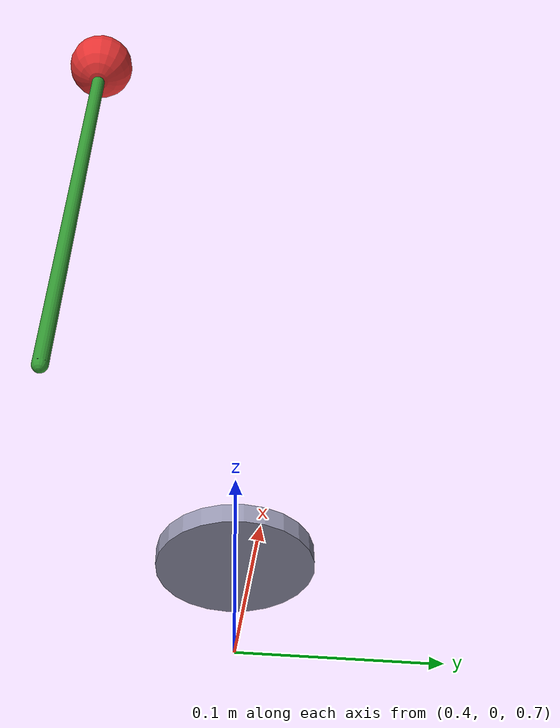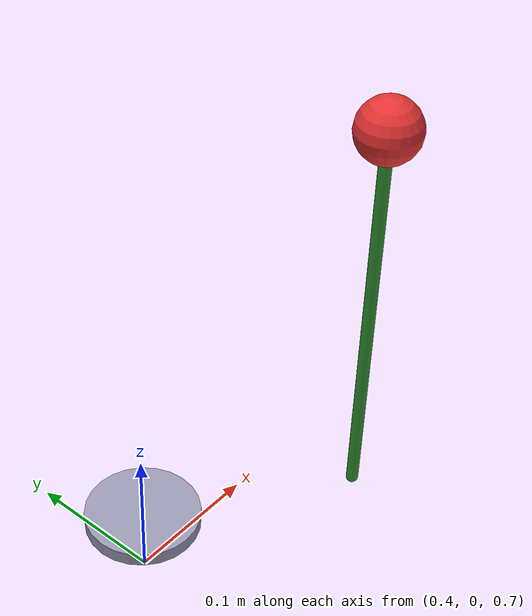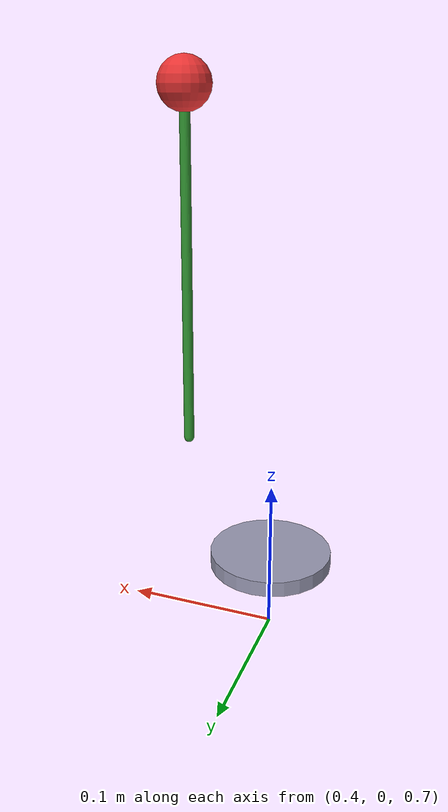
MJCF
<?xml version="1.0" ?>
<mujoco model="flower_scene">
  <asset>
  </asset>

  <worldbody>
    <!-- 花瓶：固定在桌面上，TODO 改成 attach 到现有 table body -->
    <body name="vase" pos="0.4 0.0 0.75">
      <!-- 底座 -->
      <geom name="vase_base" type="cylinder" size="0.04 0.005" rgba="0.6 0.6 0.7 1"/>
      <!-- 内壁：8 个薄 box 围成开口圆筒，TODO 用脚本算 pos/quat -->
    </body>

    <!-- 假花：方案 A 刚体，freejoint 可被抓取 -->
    <body name="flower" pos="0.5 -0.1 0.78">
      <freejoint name="flower_free"/>
      <!-- 花茎 -->
      <geom name="flower_stem" type="capsule" fromto="0 0 0  0 0 0.25"
            size="0.004" rgba="0.2 0.6 0.2 1" mass="0.02"/>
      <!-- 花头 -->
      <geom name="flower_head" type="sphere" pos="0 0 0.27"
            size="0.02" rgba="0.9 0.2 0.2 1" mass="0.005"/>
    </body>
  </worldbody>
</mujoco>
